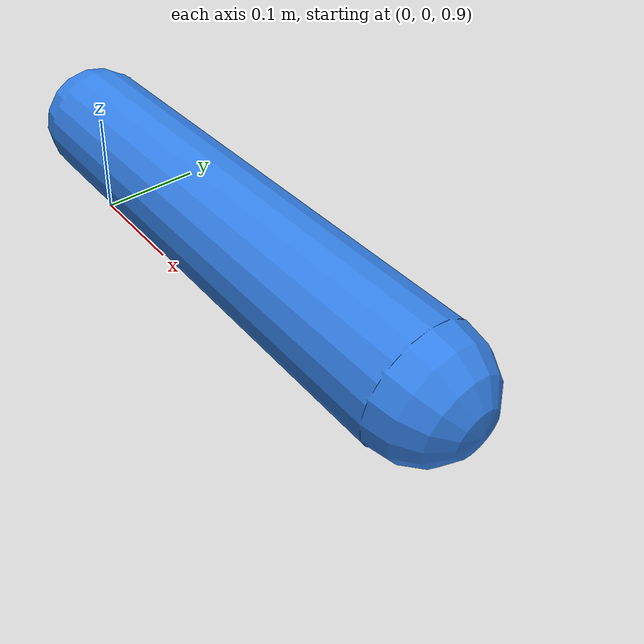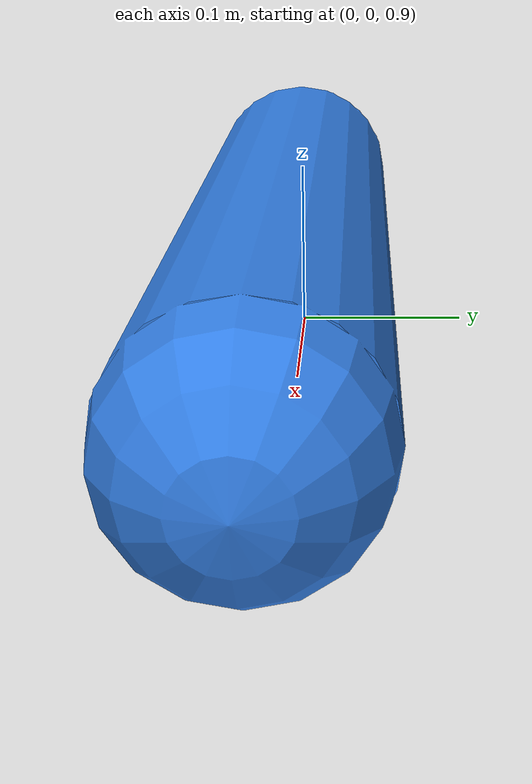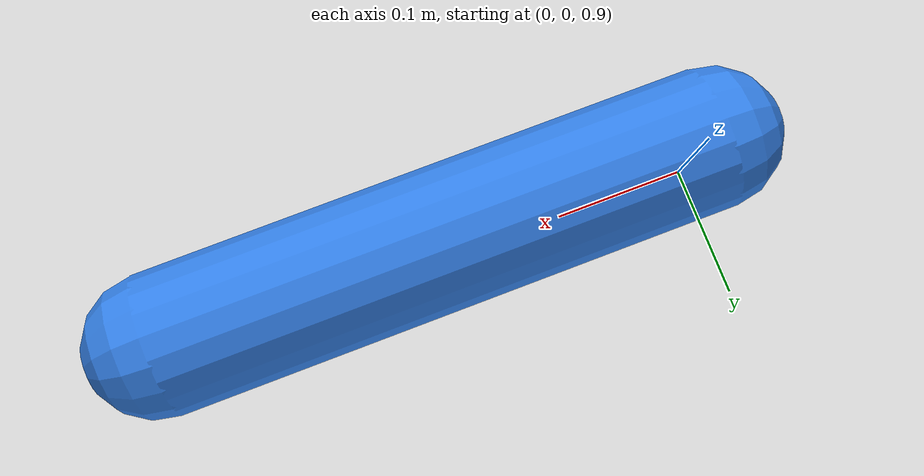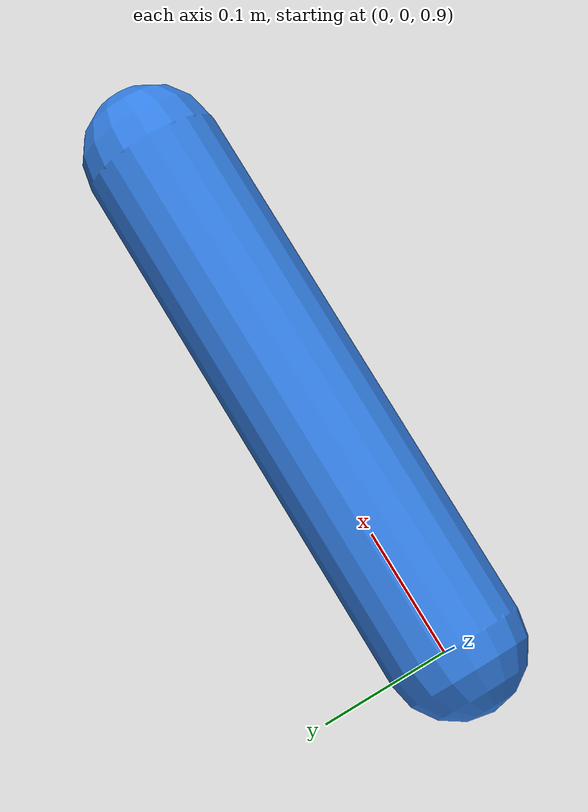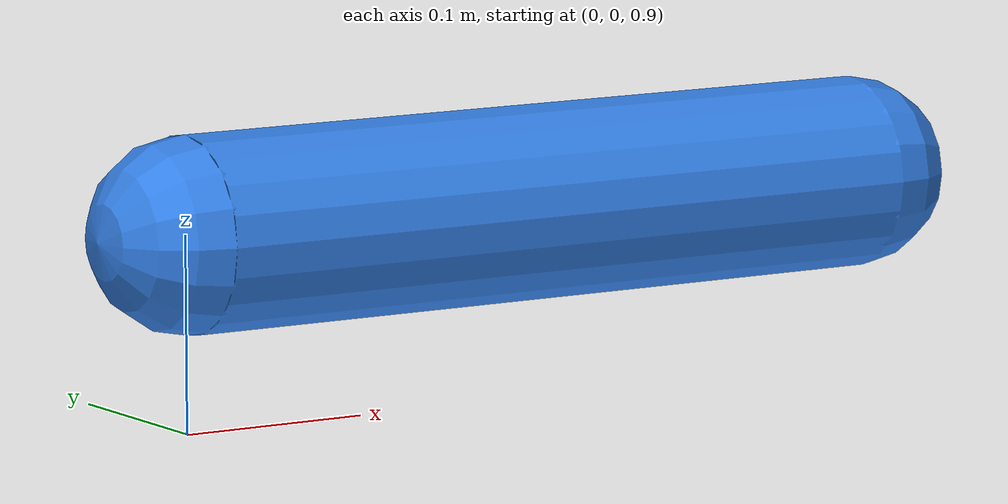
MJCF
<mujoco model="one_hinge">
  <option timestep="0.002"/>
  <worldbody>
    <geom name="ground" type="plane" size="2 2 0.1" rgba="0.8 0.8 0.8 1"/>
    <body name="pendulum" pos="0 0 1">
      <joint name="hinge" type="hinge" axis="0 1 0"/>
      <geom name="link" type="capsule" fromto="0 0 0 0.4 0 0" size="0.05" rgba="0.2 0.5 0.9 1"/>
    </body>
  </worldbody>
</mujoco>
